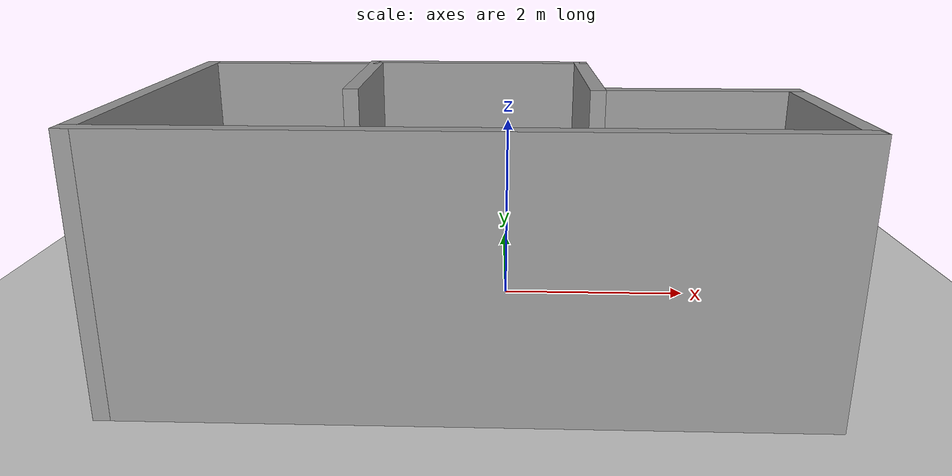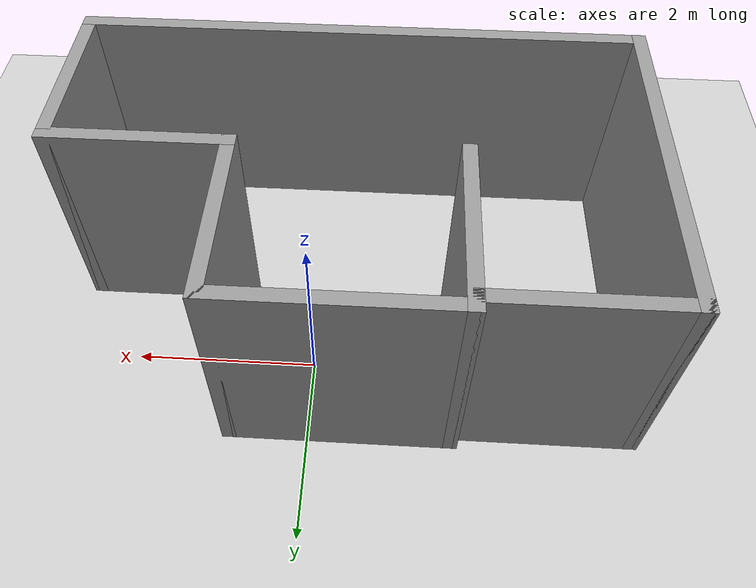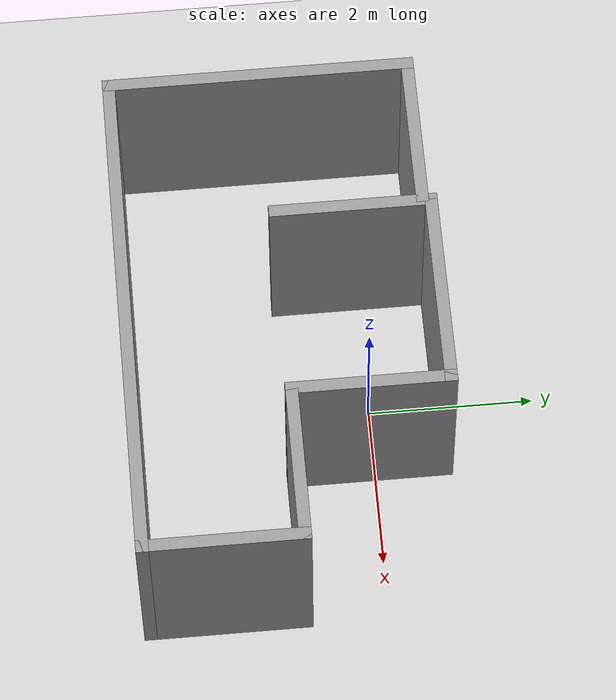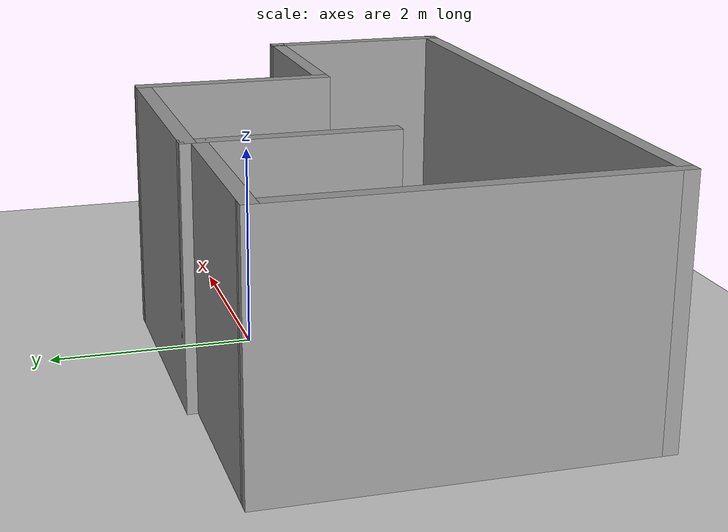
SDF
<?xml version="1.0" ?>
<sdf version="1.4">
  <world name="default">
    <include>
      <uri>model://ground_plane</uri>
    </include>
    <include>
      <uri>model://sun</uri>
    </include>
    <model name='simple_room'>
    <pose>-0.3702 -0.985783 0 0 -0 0</pose>
    <link name='Wall_0'>
      <collision name='Wall_0_Collision'>
        <geometry>
          <box>
            <size>2 0.15 2.5</size>
          </box>
        </geometry>
        <pose>0 0 1.25 0 -0 0</pose>
      </collision>
      <visual name='Wall_0_Visual'>
        <pose>0 0 1.25 0 -0 0</pose>
        <geometry>
          <box>
            <size>2 0.15 2.5</size>
          </box>
        </geometry>
        <material>
          <script>
            <uri>file://media/materials/scripts/gazebo.material</uri>
            <name>Gazebo/Grey</name>
          </script>
          <ambient>1 1 1 1</ambient>
        </material>
        <meta>
          <layer>0</layer>
        </meta>
      </visual>
      <pose>-1.15 0.925 0 0 -0 1.5708</pose>
    </link>
    <link name='Wall_3'>
      <collision name='Wall_3_Collision'>
        <geometry>
          <box>
            <size>2.5 0.15 2.5</size>
          </box>
        </geometry>
        <pose>0 0 1.25 0 -0 0</pose>
      </collision>
      <visual name='Wall_3_Visual'>
        <pose>0 0 1.25 0 -0 0</pose>
        <geometry>
          <box>
            <size>2.5 0.15 2.5</size>
          </box>
        </geometry>
        <material>
          <script>
            <uri>file://media/materials/scripts/gazebo.material</uri>
            <name>Gazebo/Grey</name>
          </script>
          <ambient>1 1 1 1</ambient>
        </material>
        <meta>
          <layer>0</layer>
        </meta>
      </visual>
      <pose>0.025 1.85 0 0 -0 0</pose>
    </link>
    <link name='Wall_4'>
      <collision name='Wall_4_Collision'>
        <geometry>
          <box>
            <size>2 0.15 2.5</size>
          </box>
        </geometry>
        <pose>0 0 1.25 0 -0 0</pose>
      </collision>
      <visual name='Wall_4_Visual'>
        <pose>0 0 1.25 0 -0 0</pose>
        <geometry>
          <box>
            <size>2 0.15 2.5</size>
          </box>
        </geometry>
        <material>
          <script>
            <uri>file://media/materials/scripts/gazebo.material</uri>
            <name>Gazebo/Grey</name>
          </script>
          <ambient>1 1 1 1</ambient>
        </material>
        <meta>
          <layer>0</layer>
        </meta>
      </visual>
      <pose>1.2 0.925 0 0 -0 -1.5708</pose>
    </link>
    <link name='Wall_5'>
      <collision name='Wall_5_Collision'>
        <geometry>
          <box>
            <size>2 0.15 2.5</size>
          </box>
        </geometry>
        <pose>0 0 1.25 0 -0 0</pose>
      </collision>
      <visual name='Wall_5_Visual'>
        <pose>0 0 1.25 0 -0 0</pose>
        <geometry>
          <box>
            <size>2 0.15 2.5</size>
          </box>
        </geometry>
        <material>
          <script>
            <uri>file://media/materials/scripts/gazebo.material</uri>
            <name>Gazebo/Grey</name>
          </script>
          <ambient>1 1 1 1</ambient>
        </material>
        <meta>
          <layer>0</layer>
        </meta>
      </visual>
      <pose>2.125 0 0 0 -0 0</pose>
    </link>
    <link name='Wall_6'>
      <collision name='Wall_6_Collision'>
        <geometry>
          <box>
            <size>2 0.15 2.5</size>
          </box>
        </geometry>
        <pose>0 0 1.25 0 -0 0</pose>
      </collision>
      <visual name='Wall_6_Visual'>
        <pose>0 0 1.25 0 -0 0</pose>
        <geometry>
          <box>
            <size>2 0.15 2.5</size>
          </box>
        </geometry>
        <material>
          <script>
            <uri>file://media/materials/scripts/gazebo.material</uri>
            <name>Gazebo/Grey</name>
          </script>
          <ambient>1 1 1 1</ambient>
        </material>
        <meta>
          <layer>0</layer>
        </meta>
      </visual>
      <pose>3.05 -0.925 0 0 -0 -1.5708</pose>
    </link>
    <link name='Wall_7'>
      <collision name='Wall_7_Collision'>
        <geometry>
          <box>
            <size>6.25 0.15 2.5</size>
          </box>
        </geometry>
        <pose>0 0 1.25 0 -0 0</pose>
      </collision>
      <visual name='Wall_7_Visual'>
        <pose>0 0 1.25 0 -0 0</pose>
        <geometry>
          <box>
            <size>6.25 0.15 2.5</size>
          </box>
        </geometry>
        <material>
          <script>
            <uri>file://media/materials/scripts/gazebo.material</uri>
            <name>Gazebo/Grey</name>
          </script>
          <ambient>1 1 1 1</ambient>
        </material>
        <meta>
          <layer>0</layer>
        </meta>
      </visual>
      <pose>0 -1.85 0 0 -0 3.14159</pose>
    </link>
    <link name='Wall_8'>
      <collision name='Wall_8_Collision'>
        <geometry>
          <box>
            <size>3.75 0.15 2.5</size>
          </box>
        </geometry>
        <pose>0 0 1.25 0 -0 0</pose>
      </collision>
      <visual name='Wall_8_Visual'>
        <pose>0 0 1.25 0 -0 0</pose>
        <geometry>
          <box>
            <size>3.75 0.15 2.5</size>
          </box>
        </geometry>
        <material>
          <script>
            <uri>file://media/materials/scripts/gazebo.material</uri>
            <name>Gazebo/Grey</name>
          </script>
          <ambient>1 1 1 1</ambient>
        </material>
        <meta>
          <layer>0</layer>
        </meta>
      </visual>
      <pose>-3.05 -0.05 0 0 -0 1.5708</pose>
    </link>
    <link name='Wall_9'>
      <collision name='Wall_9_Collision'>
        <geometry>
          <box>
            <size>2 0.15 2.5</size>
          </box>
        </geometry>
        <pose>0 0 1.25 0 -0 0</pose>
      </collision>
      <visual name='Wall_9_Visual'>
        <pose>0 0 1.25 0 -0 0</pose>
        <geometry>
          <box>
            <size>2 0.15 2.5</size>
          </box>
        </geometry>
        <material>
          <script>
            <uri>file://media/materials/scripts/gazebo.material</uri>
            <name>Gazebo/Grey</name>
          </script>
          <ambient>1 1 1 1</ambient>
        </material>
        <meta>
          <layer>0</layer>
        </meta>
      </visual>
      <pose>-2.125 1.75 0 0 -0 0</pose>
    </link>
    <static>1</static>
  </model>
  </world>
</sdf>
